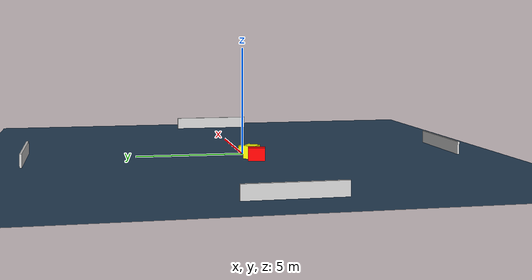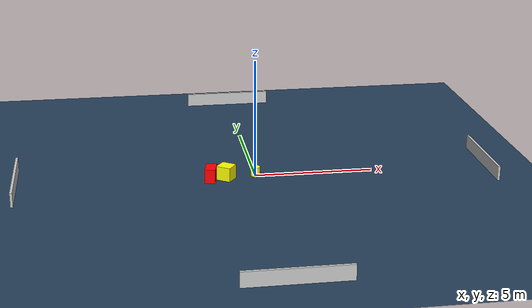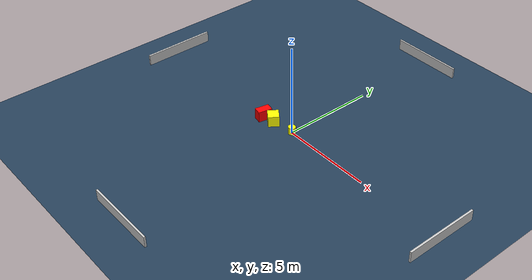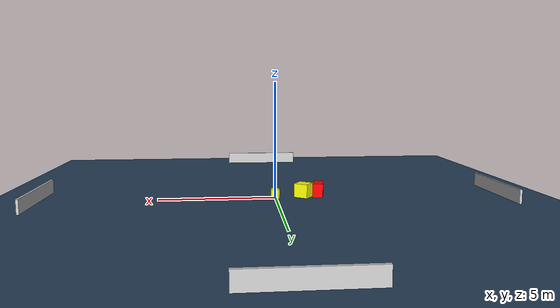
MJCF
<?xml version="1.0" ?>
<mujoco model="generated_environment">
  <option timestep="0.01" integrator="RK4" cone="elliptic"/>
  <default>
    <geom density="1"/>
  </default>
  <asset>
    <texture builtin="gradient" height="3072" name="skybox" rgb1="0.3 0.5 0.7" rgb2="0 0 0" type="skybox" width="512"/>
    <texture builtin="checker" height="300" name="groundplane" rgb1="0.2 0.3 0.4" rgb2="0.1 0.2 0.3" type="2d" width="300"/>
    <material name="groundplane" reflectance="0.2" texrepeat="5 5" texture="groundplane"/>
  </asset>
  <worldbody>
    <light dir="0 0 -1" directional="true" pos="0 0 1.5"/>
    <geom condim="3" friction="0.5 0.005 0.001" material="groundplane" name="floor" pos="0 0 0" size="0 0 0.05" type="plane"/>
    <body name="walls">
      <geom name="wall_1" condim="4" pos="-10.0 0.0 0.3" rgba="0.800000011920929 0.800000011920929 0.800000011920929 1.0" size="0.05 2.0 0.3" type="box"/>
      <geom name="wall_2" condim="4" pos="10.0 0.0 0.3" rgba="0.800000011920929 0.800000011920929 0.800000011920929 1.0" size="0.05 2.0 0.3" type="box"/>
      <geom name="wall_3" condim="4" pos="0.0 -10.0 0.3" rgba="0.800000011920929 0.800000011920929 0.800000011920929 1.0" size="2.0 0.05 0.3" type="box"/>
      <geom name="wall_4" condim="4" pos="0.0 10.0 0.3" rgba="0.800000011920929 0.800000011920929 0.800000011920929 1.0" size="2.0 0.05 0.3" type="box"/>
    </body>
    <body name="robot">
      <joint name="joint_x" type="slide" pos="0 0 0" axis="1 0 0"/>
      <joint name="joint_y" type="slide" pos="0 0 0" axis="0 1 0"/>
      <geom name="robot" type="cylinder" pos="0.0 0.0 0.2" size="0.2 0.2 0.0" mass="5.0" friction="1.0 0.005 0.0001" condim="4" rgba="1.0 1.0 0.0 1.0"/>
    </body>
    <body name="obstacle_1_movable">
      <geom name="obstacle_1_movable" condim="4" pos="-1.2619060150886166 -0.18286751114377717 0.3" euler="0 0 324.8553873665351" friction="0.0 0.005 0.001" rgba="1.0 1.0 0.0 1.0" size="0.31257553940097027 0.2955571148187941 0.3" type="box" mass="0.1"/>
      <joint type="free"/>
    </body>
    <body name="obstacle_2_static">
      <geom name="obstacle_2_static" condim="4" pos="-1.9252932559308908 -0.28150374383009186 0.3" euler="0 0 348.3265197531116" friction="0.0 0.005 0.001" rgba="1.0 0.0 0.0 1.0" size="0.22046713336199264 0.3829664468453169 0.3" type="box"/>
    </body>
  </worldbody>
  <actuator>
    <motor name="actuator_x" joint="joint_x" gear="1" ctrlrange="-1 1"/>
    <motor name="actuator_y" joint="joint_y" gear="1" ctrlrange="-1 1"/>
  </actuator>
</mujoco>
